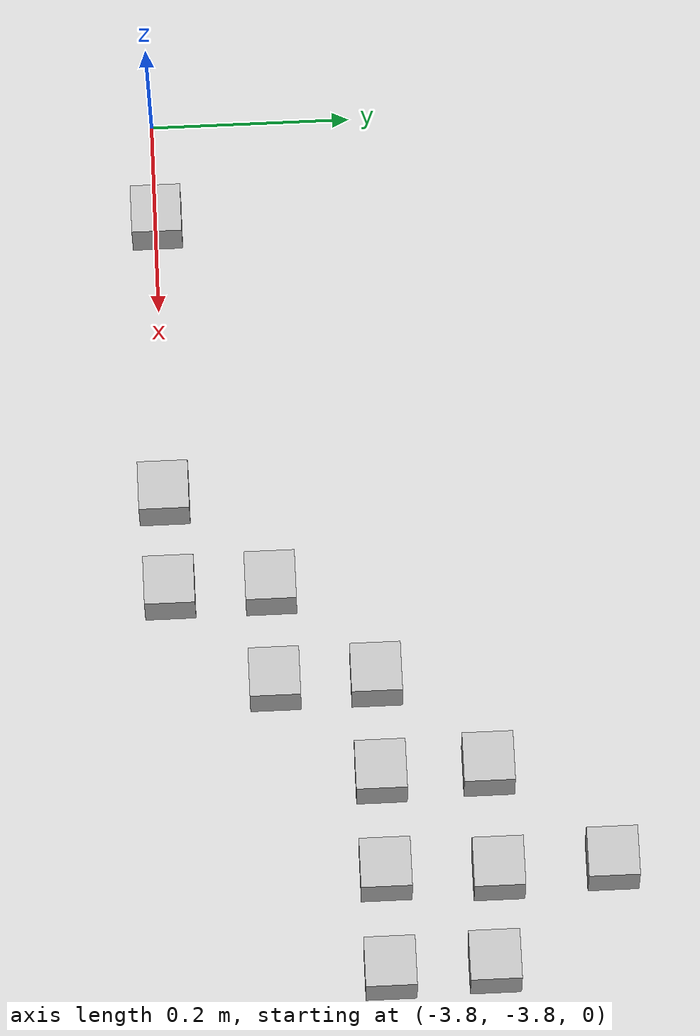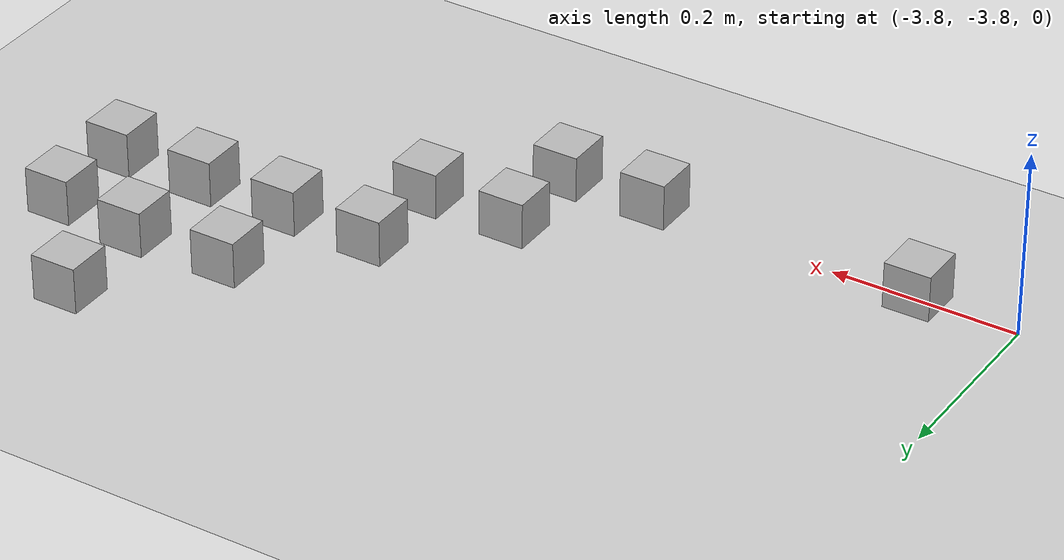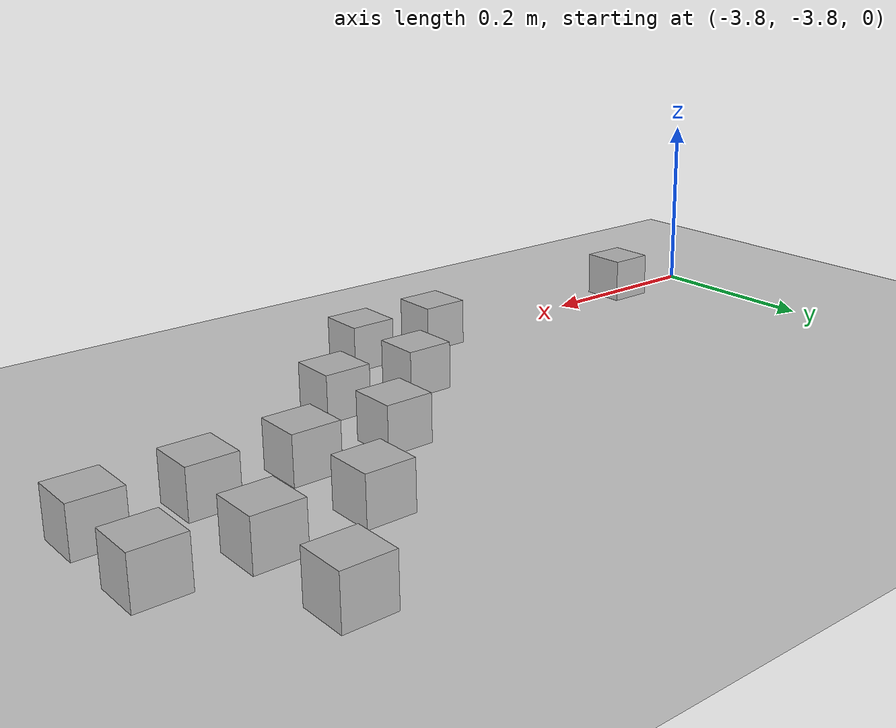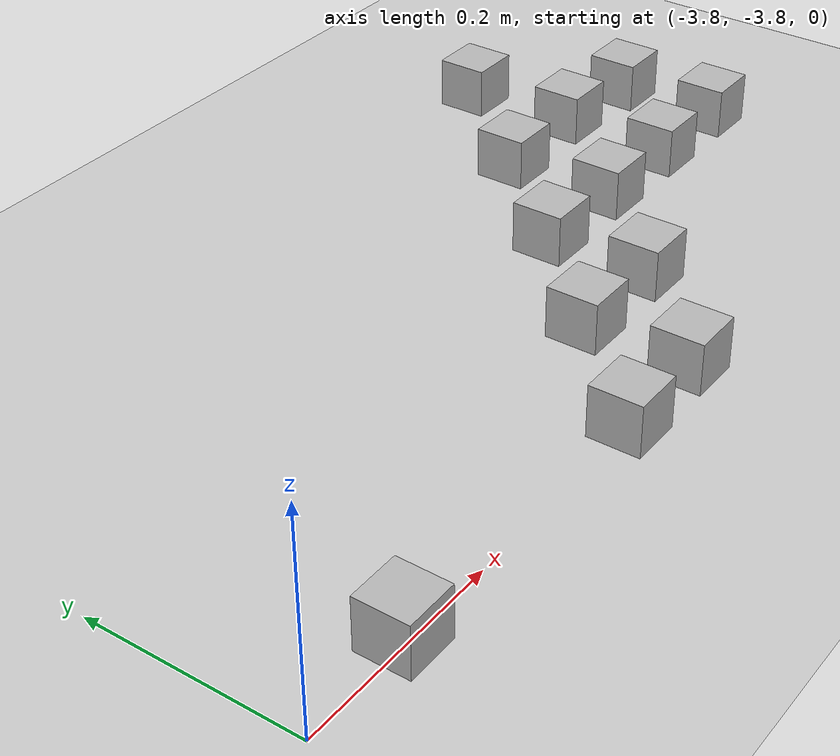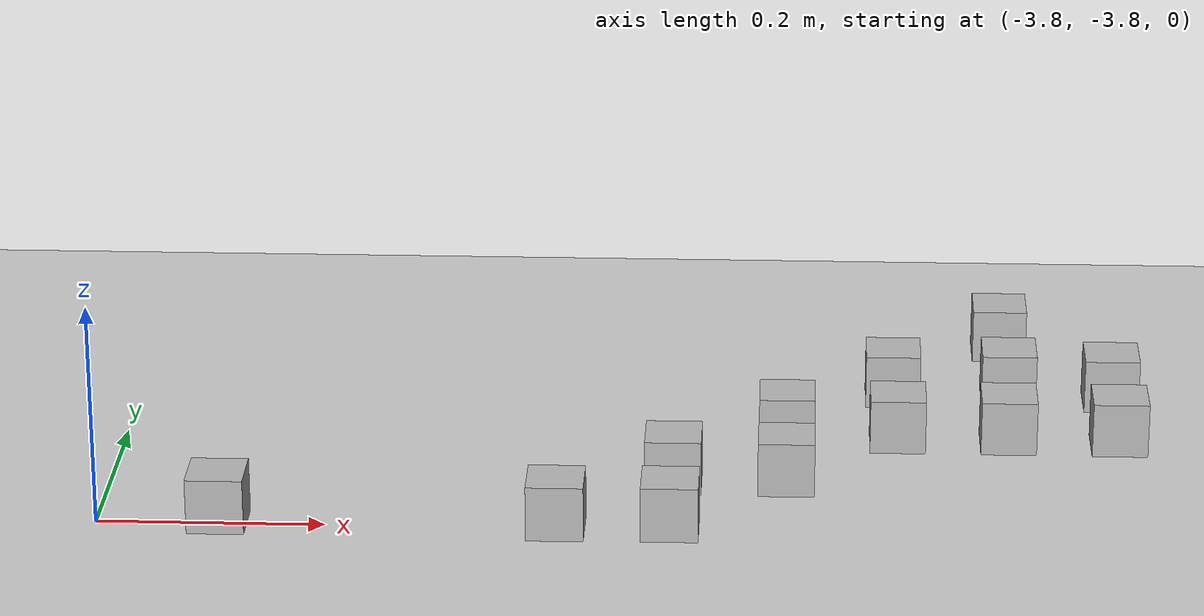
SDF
<sdf version="1.6">
 <world name="default">
  <model name="ground_plane">
   <static>1</static>
   <link name="link">
    <collision name="collision">
     <geometry><plane><normal>0 0 1</normal><size>100 100</size></plane></geometry>
     <surface><friction><ode><mu>100</mu><mu2>50</mu2></ode></friction></surface>
    </collision>
    <visual name="visual">
     <cast_shadows>0</cast_shadows>
     <geometry><plane><normal>0 0 1</normal><size>100 100</size></plane></geometry>
     <material>
      <script><uri>file://media/materials/scripts/gazebo.material</uri><name>Gazebo/Grey</name></script>
     </material>
    </visual>
   </link>
  </model>
  <model name="at230">
   <static>0</static>
   <link name="link">
    <inertial>
     <mass>0.01</mass>
     <inertia><ixx>4e-05</ixx><ixy>0</ixy><ixz>0</ixz><iyy>4e-05</iyy><iyz>0</iyz><izz>4e-05</izz></inertia>
    </inertial>
    <visual name="visual">
     <geometry><box><size>0.05 0.05 0.05</size></box></geometry>
     <material>
      <script>
       <uri>model://at0/materials/scripts</uri>
       <uri>model://at0/materials/textures</uri>
       <name>at0/Diffuse</name>
      </script>
     </material>
    </visual>
    <collision name="collision">
     <geometry><box><size>0.05 0.05 0.05</size></box></geometry>
     <surface><friction><ode><mu>0.8</mu><mu2>0.7</mu2></ode></friction></surface>
    </collision>
   </link>
   <pose>-3.10287 -3.49428 0.025 0 -0 0</pose>
  </model>
  <model name="at232">
   <static>0</static>
   <link name="link">
    <inertial>
     <mass>0.01</mass>
     <inertia><ixx>4e-05</ixx><ixy>0</ixy><ixz>0</ixz><iyy>4e-05</iyy><iyz>0</iyz><izz>4e-05</izz></inertia>
    </inertial>
    <visual name="visual">
     <geometry><box><size>0.05 0.05 0.05</size></box></geometry>
     <material>
      <script>
       <uri>model://at0/materials/scripts</uri>
       <uri>model://at0/materials/textures</uri>
       <name>at0/Diffuse</name>
      </script>
     </material>
    </visual>
    <collision name="collision">
     <geometry><box><size>0.05 0.05 0.05</size></box></geometry>
     <surface><friction><ode><mu>0.8</mu><mu2>0.7</mu2></ode></friction></surface>
    </collision>
   </link>
   <pose>-3.3 -3.8 0.025 0 -0 0</pose>
  </model>
  <model name="at234">
   <static>0</static>
   <link name="link">
    <inertial>
     <mass>0.01</mass>
     <inertia><ixx>4e-05</ixx><ixy>0</ixy><ixz>0</ixz><iyy>4e-05</iyy><iyz>0</iyz><izz>4e-05</izz></inertia>
    </inertial>
    <visual name="visual">
     <geometry><box><size>0.05 0.05 0.05</size></box></geometry>
     <material>
      <script>
       <uri>model://at0/materials/scripts</uri>
       <uri>model://at0/materials/textures</uri>
       <name>at0/Diffuse</name>
      </script>
     </material>
    </visual>
    <collision name="collision">
     <geometry><box><size>0.05 0.05 0.05</size></box></geometry>
     <surface><friction><ode><mu>0.8</mu><mu2>0.7</mu2></ode></friction></surface>
    </collision>
   </link>
   <pose>-3.39904 -3.80187 0.025 0 -0 0</pose>
  </model>
  <model name="at235">
   <static>0</static>
   <link name="link">
    <inertial>
     <mass>0.01</mass>
     <inertia><ixx>4e-05</ixx><ixy>0</ixy><ixz>0</ixz><iyy>4e-05</iyy><iyz>0</iyz><izz>4e-05</izz></inertia>
    </inertial>
    <visual name="visual">
     <geometry><box><size>0.05 0.05 0.05</size></box></geometry>
     <material>
      <script>
       <uri>model://at0/materials/scripts</uri>
       <uri>model://at0/materials/textures</uri>
       <name>at0/Diffuse</name>
      </script>
     </material>
    </visual>
    <collision name="collision">
     <geometry><box><size>0.05 0.05 0.05</size></box></geometry>
     <surface><friction><ode><mu>0.8</mu><mu2>0.7</mu2></ode></friction></surface>
    </collision>
   </link>
   <pose>-2.99582 -3.48978 0.025 0 -0 0</pose>
  </model>
  <model name="at236">
   <static>0</static>
   <link name="link">
    <inertial>
     <mass>0.01</mass>
     <inertia><ixx>4e-05</ixx><ixy>0</ixy><ixz>0</ixz><iyy>4e-05</iyy><iyz>0</iyz><izz>4e-05</izz></inertia>
    </inertial>
    <visual name="visual">
     <geometry><box><size>0.05 0.05 0.05</size></box></geometry>
     <material>
      <script>
       <uri>model://at0/materials/scripts</uri>
       <uri>model://at0/materials/textures</uri>
       <name>at0/Diffuse</name>
      </script>
     </material>
    </visual>
    <collision name="collision">
     <geometry><box><size>0.05 0.05 0.05</size></box></geometry>
     <surface><friction><ode><mu>0.8</mu><mu2>0.7</mu2></ode></friction></surface>
    </collision>
   </link>
   <pose>-2.90179 -3.49812 0.025 0 -0 0</pose>
  </model>
  <model name="at240">
   <static>0</static>
   <link name="link">
    <inertial>
     <mass>0.01</mass>
     <inertia><ixx>4e-05</ixx><ixy>0</ixy><ixz>0</ixz><iyy>4e-05</iyy><iyz>0</iyz><izz>4e-05</izz></inertia>
    </inertial>
    <visual name="visual">
     <geometry><box><size>0.05 0.05 0.05</size></box></geometry>
     <material>
      <script>
       <uri>model://at0/materials/scripts</uri>
       <uri>model://at0/materials/textures</uri>
       <name>at0/Diffuse</name>
      </script>
     </material>
    </visual>
    <collision name="collision">
     <geometry><box><size>0.05 0.05 0.05</size></box></geometry>
     <surface><friction><ode><mu>0.8</mu><mu2>0.7</mu2></ode></friction></surface>
    </collision>
   </link>
   <pose>-3.3 -3.7 0.025 0 -0 0</pose>
  </model>
  <model name="at241">
   <static>0</static>
   <link name="link">
    <inertial>
     <mass>0.01</mass>
     <inertia><ixx>4e-05</ixx><ixy>0</ixy><ixz>0</ixz><iyy>4e-05</iyy><iyz>0</iyz><izz>4e-05</izz></inertia>
    </inertial>
    <visual name="visual">
     <geometry><box><size>0.05 0.05 0.05</size></box></geometry>
     <material>
      <script>
       <uri>model://at0/materials/scripts</uri>
       <uri>model://at0/materials/textures</uri>
       <name>at0/Diffuse</name>
      </script>
     </material>
    </visual>
    <collision name="collision">
     <geometry><box><size>0.05 0.05 0.05</size></box></geometry>
     <surface><friction><ode><mu>0.8</mu><mu2>0.7</mu2></ode></friction></surface>
    </collision>
   </link>
   <pose>-3.2 -3.7 0.025 0 -0 0</pose>
  </model>
  <model name="at244">
   <static>0</static>
   <link name="link">
    <inertial>
     <mass>0.01</mass>
     <inertia><ixx>4e-05</ixx><ixy>0</ixy><ixz>0</ixz><iyy>4e-05</iyy><iyz>0</iyz><izz>4e-05</izz></inertia>
    </inertial>
    <visual name="visual">
     <geometry><box><size>0.05 0.05 0.05</size></box></geometry>
     <material>
      <script>
       <uri>model://at0/materials/scripts</uri>
       <uri>model://at0/materials/textures</uri>
       <name>at0/Diffuse</name>
      </script>
     </material>
    </visual>
    <collision name="collision">
     <geometry><box><size>0.05 0.05 0.05</size></box></geometry>
     <surface><friction><ode><mu>0.8</mu><mu2>0.7</mu2></ode></friction></surface>
    </collision>
   </link>
   <pose>-3.00081 -3.37792 0.025 0 -0 0</pose>
  </model>
  <model name="at248">
   <static>0</static>
   <link name="link">
    <inertial>
     <mass>0.01</mass>
     <inertia><ixx>4e-05</ixx><ixy>0</ixy><ixz>0</ixz><iyy>4e-05</iyy><iyz>0</iyz><izz>4e-05</izz></inertia>
    </inertial>
    <visual name="visual">
     <geometry><box><size>0.05 0.05 0.05</size></box></geometry>
     <material>
      <script>
       <uri>model://at0/materials/scripts</uri>
       <uri>model://at0/materials/textures</uri>
       <name>at0/Diffuse</name>
      </script>
     </material>
    </visual>
    <collision name="collision">
     <geometry><box><size>0.05 0.05 0.05</size></box></geometry>
     <surface><friction><ode><mu>0.8</mu><mu2>0.7</mu2></ode></friction></surface>
    </collision>
   </link>
   <pose>-3.69342 -3.79822 0.025 0 -0 0</pose>
  </model>
  <model name="at249">
   <static>0</static>
   <link name="link">
    <inertial>
     <mass>0.01</mass>
     <inertia><ixx>4e-05</ixx><ixy>0</ixy><ixz>0</ixz><iyy>4e-05</iyy><iyz>0</iyz><izz>4e-05</izz></inertia>
    </inertial>
    <visual name="visual">
     <geometry><box><size>0.05 0.05 0.05</size></box></geometry>
     <material>
      <script>
       <uri>model://at0/materials/scripts</uri>
       <uri>model://at0/materials/textures</uri>
       <name>at0/Diffuse</name>
      </script>
     </material>
    </visual>
    <collision name="collision">
     <geometry><box><size>0.05 0.05 0.05</size></box></geometry>
     <surface><friction><ode><mu>0.8</mu><mu2>0.7</mu2></ode></friction></surface>
    </collision>
   </link>
   <pose>-3.2 -3.6 0.025 0 -0 0</pose>
  </model>
  <model name="at250">
   <static>0</static>
   <link name="link">
    <inertial>
     <mass>0.01</mass>
     <inertia><ixx>4e-05</ixx><ixy>0</ixy><ixz>0</ixz><iyy>4e-05</iyy><iyz>0</iyz><izz>4e-05</izz></inertia>
    </inertial>
    <visual name="visual">
     <geometry><box><size>0.05 0.05 0.05</size></box></geometry>
     <material>
      <script>
       <uri>model://at0/materials/scripts</uri>
       <uri>model://at0/materials/textures</uri>
       <name>at0/Diffuse</name>
      </script>
     </material>
    </visual>
    <collision name="collision">
     <geometry><box><size>0.05 0.05 0.05</size></box></geometry>
     <surface><friction><ode><mu>0.8</mu><mu2>0.7</mu2></ode></friction></surface>
    </collision>
   </link>
   <pose>-3.1 -3.6 0.025 0 -0 0</pose>
  </model>
  <model name="at251">
   <static>0</static>
   <link name="link">
    <inertial>
     <mass>0.01</mass>
     <inertia><ixx>4e-05</ixx><ixy>0</ixy><ixz>0</ixz><iyy>4e-05</iyy><iyz>0</iyz><izz>4e-05</izz></inertia>
    </inertial>
    <visual name="visual">
     <geometry><box><size>0.05 0.05 0.05</size></box></geometry>
     <material>
      <script>
       <uri>model://at0/materials/scripts</uri>
       <uri>model://at0/materials/textures</uri>
       <name>at0/Diffuse</name>
      </script>
     </material>
    </visual>
    <collision name="collision">
     <geometry><box><size>0.05 0.05 0.05</size></box></geometry>
     <surface><friction><ode><mu>0.8</mu><mu2>0.7</mu2></ode></friction></surface>
    </collision>
   </link>
   <pose>-3 -3.6 0.025 0 -0 0</pose>
  </model>
  <model name="at252">
   <static>0</static>
   <link name="link">
    <inertial>
     <mass>0.01</mass>
     <inertia><ixx>4e-05</ixx><ixy>0</ixy><ixz>0</ixz><iyy>4e-05</iyy><iyz>0</iyz><izz>4e-05</izz></inertia>
    </inertial>
    <visual name="visual">
     <geometry><box><size>0.05 0.05 0.05</size></box></geometry>
     <material>
      <script>
       <uri>model://at0/materials/scripts</uri>
       <uri>model://at0/materials/textures</uri>
       <name>at0/Diffuse</name>
      </script>
     </material>
    </visual>
    <collision name="collision">
     <geometry><box><size>0.05 0.05 0.05</size></box></geometry>
     <surface><friction><ode><mu>0.8</mu><mu2>0.7</mu2></ode></friction></surface>
    </collision>
   </link>
   <pose>-2.9 -3.6 0.025 0 -0 0</pose>
  </model>
 </world>
</sdf>
